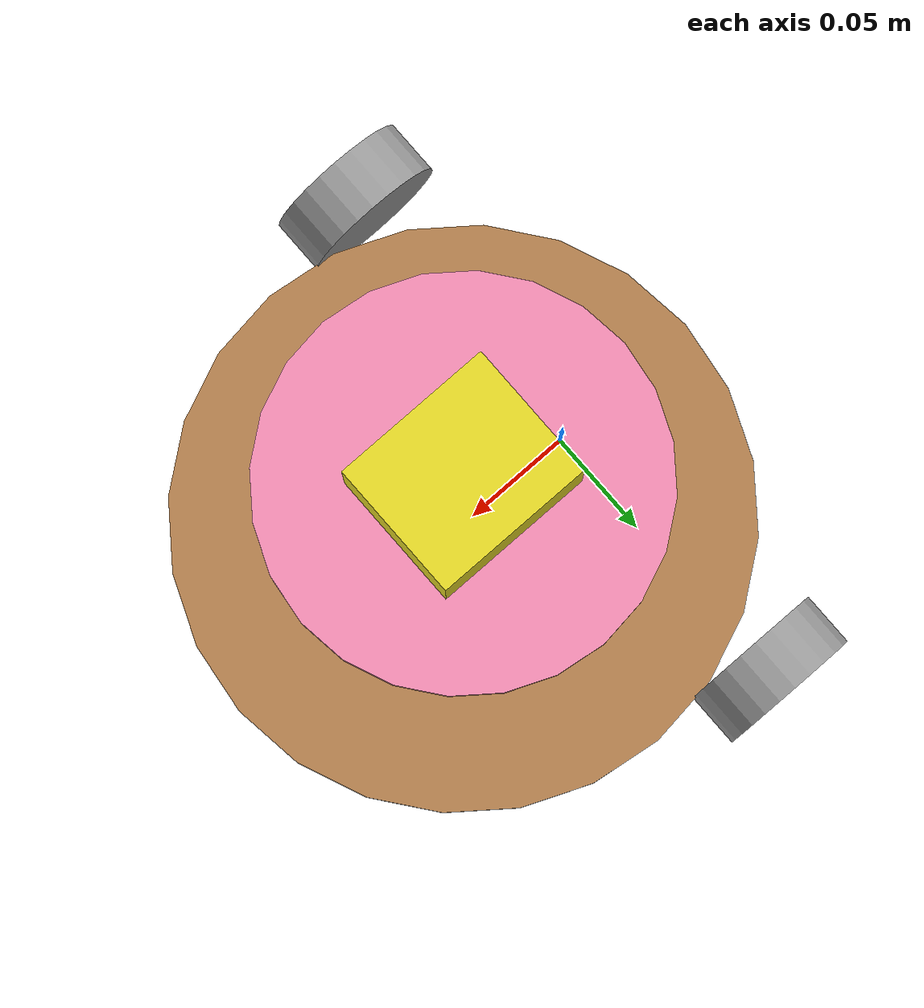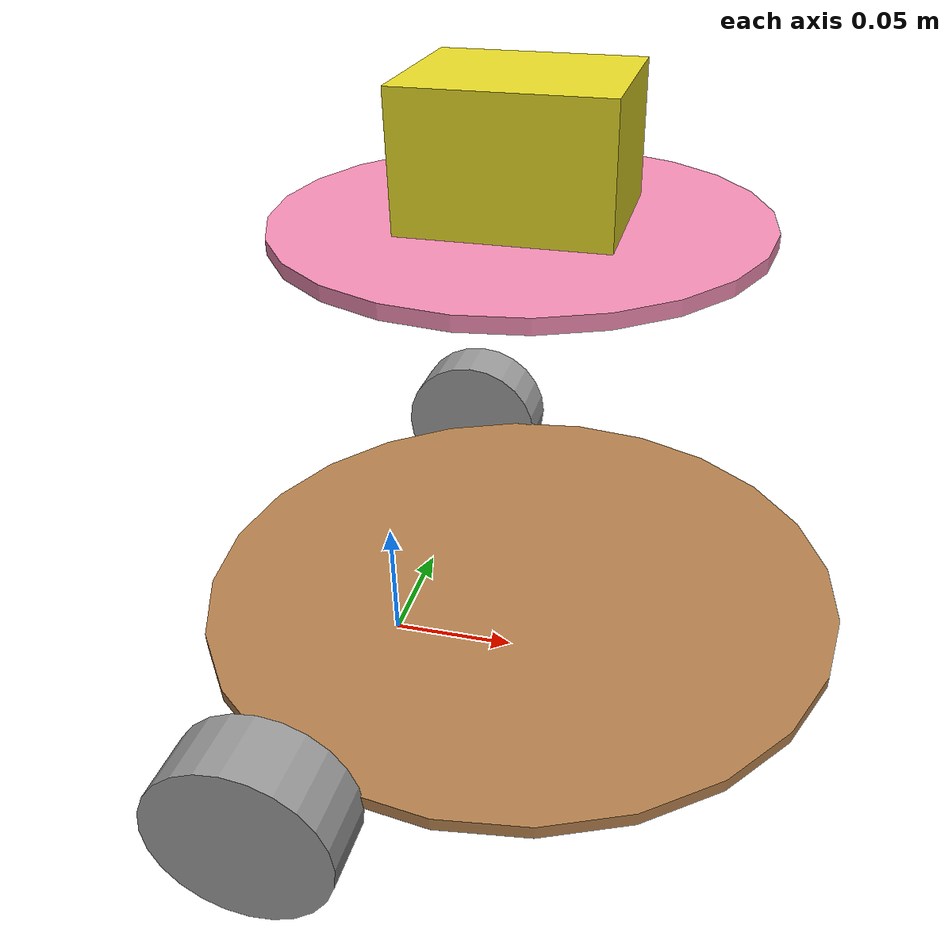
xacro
<?xml version="1.0"?>
<robot xmlns:xacro="http://www.ros.org/wiki/xacro">

    <xacro:property name="base_height" value="0.15" />
    <xacro:property name="base_radius" value="0.125" />
    <xacro:property name="base_height_visual" value="0.005" />
    <xacro:property name="wheel_radius" value="0.0325" />
    <xacro:property name="wheel_length" value="0.025" />

    <xacro:property name="wheel_seperationdiv2" value="0.1336" />
    <!-- cai nay khac so voi cai gazebo vi thuc te xe phai cat bo phan bi dinh, (cai nay chi la hien thi nen khong sao) -->

    <xacro:property name="wheel_0point_y" value="0.055581" />

    <xacro:property name="lidar_length" value="0.07" />
    <xacro:property name="lidar_width" value="0.06" />
    <xacro:property name="lidar_height" value="0.05" />

    <xacro:property name="base_length" value="0.6" />
    <xacro:property name="base_width" value="0.4" />

    <link name="base_footprint" />

    <link name="base_link">
        <visual>
            <geometry>
                <cylinder radius="${base_radius}" length="${base_height_visual}" />
            </geometry>
                <origin xyz="0 0 ${base_height_visual / 2.0}" rpy="0 0 0" />
            <material name="wood" />
        </visual>
        <collision>
            <geometry>
                <cylinder radius="${base_radius}" length="${base_height}" />
            </geometry>
            <origin xyz="0 0 ${base_height / 2.0}" rpy="0 0 0" />
        </collision>
            <xacro:cylinder_inertia m="1.0" r="${base_radius}" l="${base_height}"
                                    o_xyz="0 0 0" o_rpy="0 0 0" />
    </link>

    <link name="lidar_link">
        <visual>
            <geometry>
                <box size="${lidar_length} ${lidar_width} ${lidar_height}" />
            </geometry>
                <origin xyz="0 0 ${lidar_height / 2.0}" rpy="0 0 0" />
            <material name="yellow" />
        </visual>
        <collision>
            <geometry>
                <box size="${lidar_length} ${lidar_width} ${lidar_height}" />
            </geometry>
            <origin xyz="0 0 ${lidar_height / 2.0}" rpy="0 0 0" />
        </collision>
        <xacro:box_inertia m="0.2" x="${lidar_length}" y="${lidar_width}" z="${lidar_height}"
                           o_xyz="0 0 ${lidar_height / 2.0}" o_rpy="0 0 0" />
    </link>

    <link name="second_base_link">
        <visual>
            <geometry>
                <cylinder radius="${base_radius / 1.5}" length="${base_height_visual}" />
            </geometry>
                <origin xyz="0 0 ${base_height_visual / 2.0}" rpy="0 0 0" />
            <material name="pink" />
        </visual>
    </link>

    <xacro:macro name="wheel_link" params="prefix">
        <link name="${prefix}_wheel_link">
            <visual>
                <geometry>
                    <cylinder radius="${wheel_radius}" length="${wheel_length}" />
                </geometry>
                <origin xyz="0 0 0" rpy="${pi / 2.0} 0 0" />
                <material name="gray" />
            </visual>
            <collision>
                <geometry>
                    <sphere radius="${wheel_radius}" />
                </geometry>
                <origin xyz="0 0 0" rpy="0 0 0" />
            </collision>
            <xacro:cylinder_inertia m="1.0" r="${wheel_radius}" l="${wheel_length}"
                                    o_xyz="0 0 0" o_rpy="${pi / 2.0} 0 0" />
        </link>
    </xacro:macro>

    <xacro:wheel_link prefix="right" />
    <xacro:wheel_link prefix="left" />

    <link name="caster_wheel_link">
        <visual>
            <geometry>
                <sphere radius="${wheel_radius / 2.0}" />
            </geometry>
            <origin xyz="0 0 0" rpy="0 0 0" />
            <material name="gray" />
        </visual>
        <collision>
            <geometry>
                <sphere radius="${wheel_radius / 2.0}" />
            </geometry>
            <origin xyz="0 0 0" rpy="0 0 0" />
        </collision>
        <xacro:sphere_inertia m="0.5" r="${wheel_radius / 2.0}"
                              o_xyz="0 0 0" o_rpy="0 0 0" />
    </link>

    <joint name="base_joint" type="fixed">
        <parent link="base_footprint" />
        <child link="base_link" />
        <origin xyz="${wheel_0point_y}  0 ${wheel_radius}" rpy="0 0 0" />
    </joint>

    <joint name="base_lidar" type="fixed">
        <parent link="base_link" />
        <child link="lidar_link" />
        <origin xyz="0  0 ${base_height}" rpy="0 0 0" />
    </joint>

    <joint name="base_second_base" type="fixed">
        <parent link="base_link" />
        <child link="second_base_link" />
        <origin xyz="0  0 ${base_height}" rpy="0 0 0" />
    </joint>

    <joint name="base_right_wheel_joint" type="continuous">
        <parent link="base_link" />
        <child link="right_wheel_link" />
        <origin xyz="${-wheel_0point_y} ${-(wheel_seperationdiv2) / 1.0} 0" rpy="0 0 0" />
        <axis xyz="0 1 0" />
    </joint>

    <joint name="base_left_wheel_joint" type="continuous">
        <parent link="base_link" />
        <child link="left_wheel_link" />
        <origin xyz="${-wheel_0point_y} ${(wheel_seperationdiv2) / 1.0} 0" rpy="0 0 0" />
        <axis xyz="0 1 0" />
    </joint>

    <joint name="base_caster_wheel_joint" type="fixed">
        <parent link="base_link" />
        <child link="caster_wheel_link" />
        <origin xyz="${base_radius / 2.0} 0 ${-wheel_radius / 2.0}" rpy="0 0 0" />
    </joint>

</robot>
